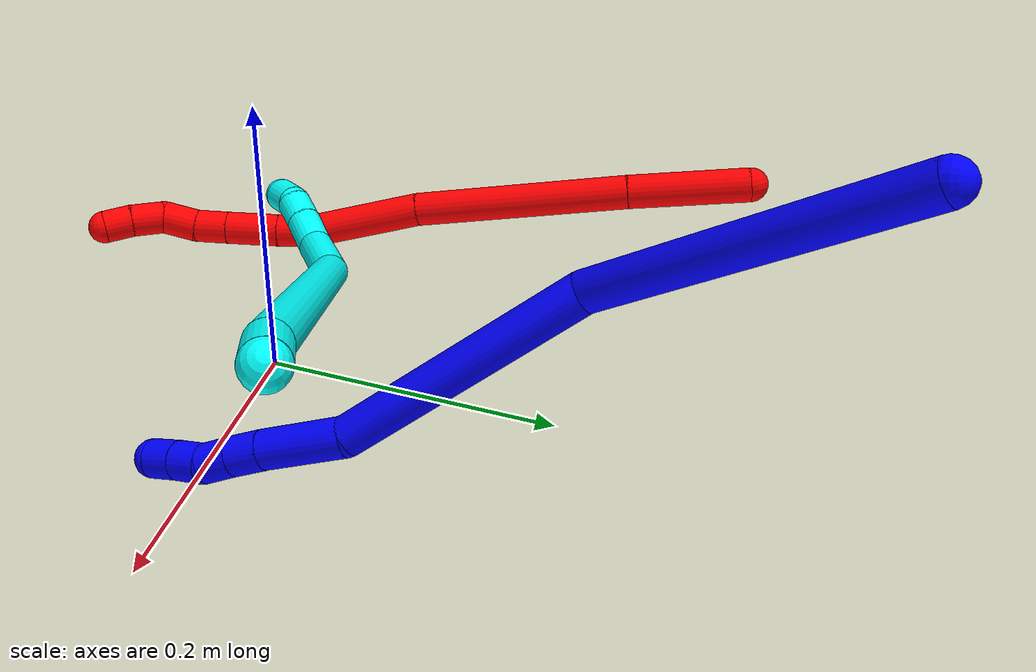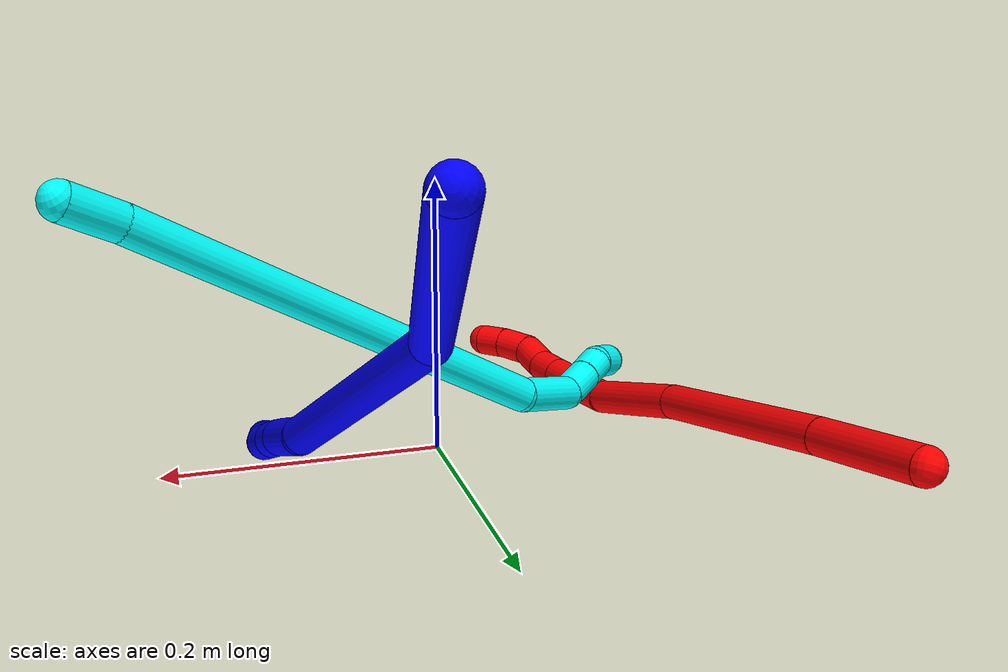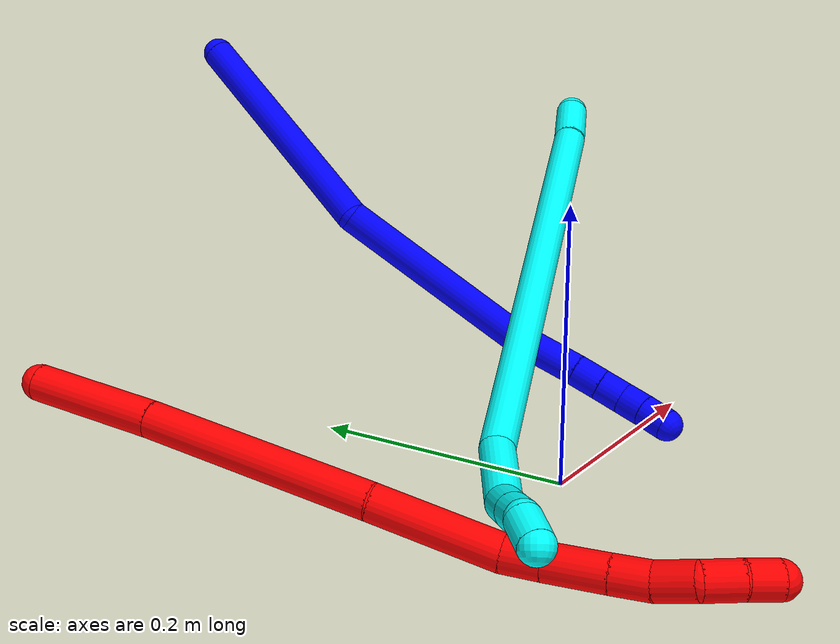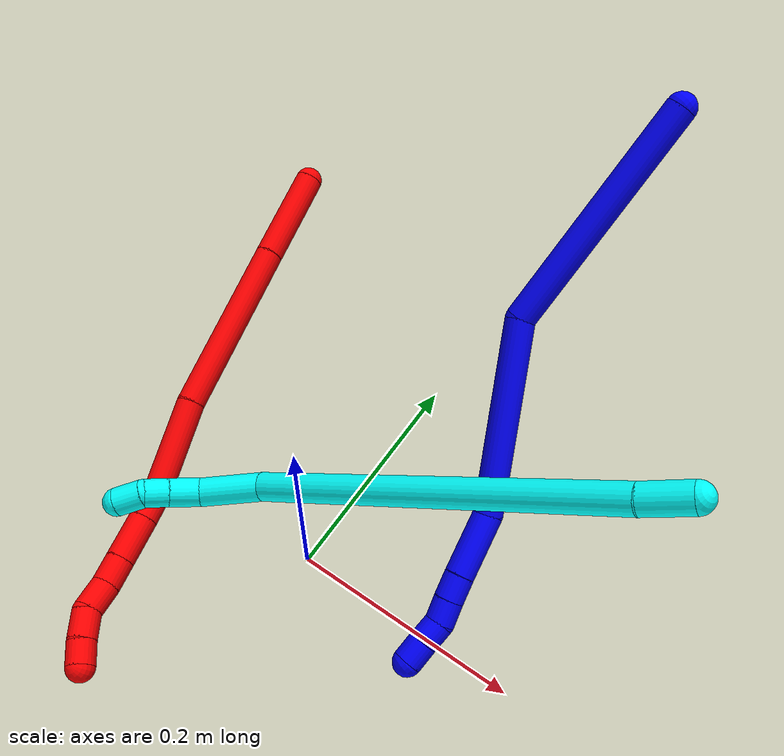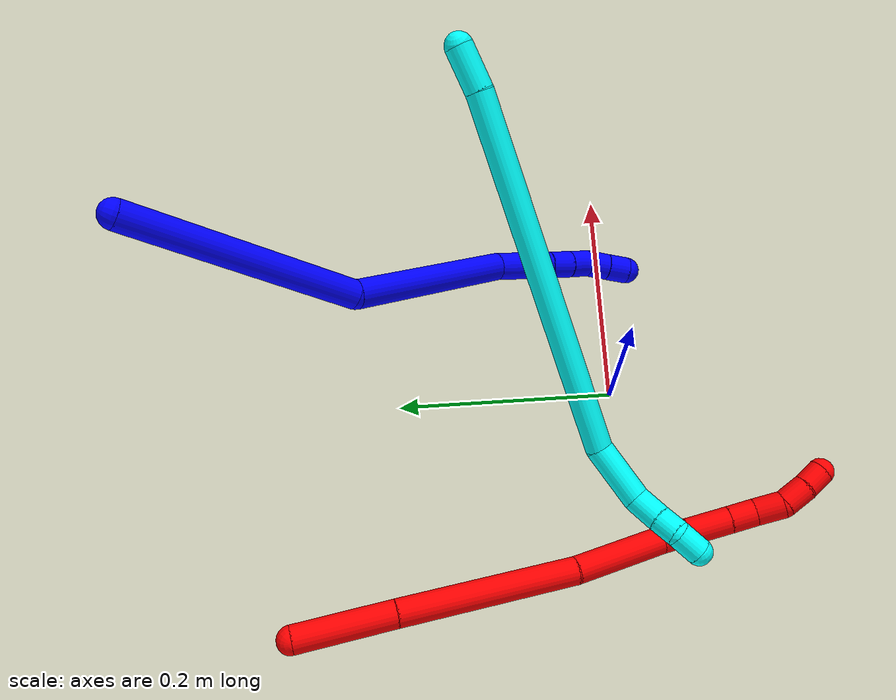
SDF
<sdf version="1.7">
 <world name="default">
  <plugin name="TubeGeneratorPlugin" filename="libtube_generator_plugin.so"/>
  <model name="photoneo_s_sensor">
   <static>1</static>
   <pose>0 0 2 1.57079 1.57079 3.14159</pose>
   <link name="link">
    <inertial><mass>0.1</mass></inertial>
    <sensor name="sensor" type="depth">
     <update_rate>30</update_rate>
     <camera>
      <horizontal_fov>1.22</horizontal_fov>
      <image><width>1920</width><height>1200</height><format>B8G8R8</format></image>
      <clip><near>0.1</near><far>4</far></clip>
      <depth_camera><output>points</output></depth_camera>
     </camera>
     <plugin name="camera_plugin" filename="libgazebo_ros_depth_camera.so">
      <baseline>0.2</baseline>
      <alwaysOn>1</alwaysOn>
      <updateRate>0.0</updateRate>
      <cameraName>camera_ir</cameraName>
      <imageTopicName>/camera/color/image_raw</imageTopicName>
      <cameraInfoTopicName>/camera/color/camera_info</cameraInfoTopicName>
      <depthImageTopicName>/camera/depth/image_raw</depthImageTopicName>
      <depthImageCameraInfoTopicName>/camera/depth/camera_info</depthImageCameraInfoTopicName>
      <pointCloudTopicName>/camera/depth/points</pointCloudTopicName>
      <frameName>fr_optical</frameName>
      <pointCloudCutoff>0.1</pointCloudCutoff>
      <pointCloudCutoffMax>2.0</pointCloudCutoffMax>
      <distortionK1>0</distortionK1>
      <distortionK2>0</distortionK2>
      <distortionK3>0</distortionK3>
      <distortionT1>0</distortionT1>
      <distortionT2>0</distortionT2>
      <CxPrime>0</CxPrime>
      <Cx>0</Cx>
      <Cy>0</Cy>
      <focalLength>0</focalLength>
      <hackBaseline>0</hackBaseline>
     </plugin>
    </sensor>
   </link>
  </model>
  <gravity>0 0 -9.8</gravity>
  <magnetic_field>6e-06 2.3e-05 -4.2e-05</magnetic_field>
  <atmosphere type="adiabatic"/>
  <physics name="default_physics" default="0" type="ode">
   <max_step_size>0.003</max_step_size>
   <real_time_factor>1</real_time_factor>
   <real_time_update_rate>1000</real_time_update_rate>
   <max_contacts>10000</max_contacts>
   <ode>
    <solver>
     <type>quick</type>
     <iters>100</iters>
     <sor>1.3</sor>
     <use_dynamic_moi_rescaling>0</use_dynamic_moi_rescaling>
    </solver>
    <constraints>
     <contact_max_correcting_vel>0</contact_max_correcting_vel>
     <contact_surface_layer>0.001</contact_surface_layer>
     <cfm>0</cfm>
     <erp>0.2</erp>
    </constraints>
   </ode>
  </physics>
  <scene><ambient>0.4 0.4 0.4 1</ambient><background>0.7 0.7 0.7 1</background><shadows>0</shadows></scene>
  <audio><device>default</device></audio>
  <spherical_coordinates>
   <surface_model>EARTH_WGS84</surface_model>
   <latitude_deg>0</latitude_deg>
   <longitude_deg>0</longitude_deg>
   <elevation>0</elevation>
   <heading_deg>0</heading_deg>
  </spherical_coordinates>
  <model name="bin">
   <static>1</static>
   <link name="bottom">
    <collision name="collision-bottom">
     <pose>0 0 -0.01 0 -0 0</pose>
     <geometry><box><size>0.8 0.6 0.02</size></box></geometry>
     <surface>
      <friction><ode><mu>100</mu><mu2>100</mu2></ode></friction>
      <contact><collide_bitmask>65535</collide_bitmask></contact>
     </surface>
    </collision>
   </link>
   <link name="west_wall">
    <collision name="collision-west_wall">
     <pose>-0.41 0 0.1 0 -0 0</pose>
     <geometry><box><size>0.02 0.6 0.2</size></box></geometry>
     <surface>
      <friction><ode><mu>100</mu><mu2>100</mu2></ode></friction>
      <contact><collide_bitmask>65535</collide_bitmask></contact>
     </surface>
    </collision>
   </link>
   <link name="east_wall">
    <collision name="collision-east_wall">
     <pose>0.41 0 0.1 0 -0 0</pose>
     <geometry><box><size>0.02 0.6 0.2</size></box></geometry>
     <surface>
      <friction><ode><mu>100</mu><mu2>100</mu2></ode></friction>
      <contact><collide_bitmask>65535</collide_bitmask></contact>
     </surface>
    </collision>
   </link>
   <link name="south_wall">
    <collision name="collision-south_wall">
     <pose>0 -0.31 0.1 0 -0 0</pose>
     <geometry><box><size>0.8 0.02 0.2</size></box></geometry>
     <surface>
      <friction><ode><mu>100</mu><mu2>100</mu2></ode></friction>
      <contact><collide_bitmask>65535</collide_bitmask></contact>
     </surface>
    </collision>
   </link>
   <link name="north_wall">
    <collision name="collision-north_wall">
     <pose>0 0.31 0.1 0 -0 0</pose>
     <geometry><box><size>0.8 0.02 0.2</size></box></geometry>
     <surface>
      <friction><ode><mu>100</mu><mu2>100</mu2></ode></friction>
      <contact><collide_bitmask>65535</collide_bitmask></contact>
     </surface>
    </collision>
   </link>
  </model>
  <model name="1">
   <static>0</static>
   <link name="1">
    <collision name="collision-cylinder-e_1_1_4">
     <pose>0.020285 -0.017562 -0.096133 2.9609 0.204664 1.6958</pose>
     <geometry><cylinder><radius>0.0125</radius><length>0.199615</length></cylinder></geometry>
     <surface>
      <friction><ode><mu>1.16</mu><mu2>1.16</mu2><slip1>0</slip1><slip2>0</slip2></ode></friction>
      <contact><ode><kp>1e+06</kp><kd>1</kd><max_vel>0</max_vel><min_depth>0.001</min_depth></ode></contact>
     </surface>
    </collision>
    <visual name="visual-cylinder-e_1_1_4">
     <pose>0.020285 -0.017562 -0.096133 2.9609 0.204664 1.6958</pose>
     <geometry><cylinder><radius>0.0125</radius><length>0.199615</length></cylinder></geometry>
     <material><ambient>0 0 1 1</ambient></material>
    </visual>
    <collision name="collision-cylinder-e_2_4_5">
     <pose>0.054889 -0.085691 -0.254229 2.45713 0.177166 0.488651</pose>
     <geometry><cylinder><radius>0.0125</radius><length>0.162497</length></cylinder></geometry>
     <surface>
      <friction><ode><mu>1.16</mu><mu2>1.16</mu2><slip1>0</slip1><slip2>0</slip2></ode></friction>
      <contact><ode><kp>1e+06</kp><kd>1</kd><max_vel>0</max_vel><min_depth>0.001</min_depth></ode></contact>
     </surface>
    </collision>
    <visual name="visual-cylinder-e_2_4_5">
     <pose>0.054889 -0.085691 -0.254229 2.45713 0.177166 0.488651</pose>
     <geometry><cylinder><radius>0.0125</radius><length>0.162497</length></cylinder></geometry>
     <material><ambient>0 0 1 1</ambient></material>
    </visual>
    <collision name="collision-cylinder-e_3_5_6">
     <pose>0.067173 -0.147496 -0.341022 2.71653 -0.07451 -0.342075</pose>
     <geometry><cylinder><radius>0.0125</radius><length>0.054664</length></cylinder></geometry>
     <surface>
      <friction><ode><mu>1.16</mu><mu2>1.16</mu2><slip1>0</slip1><slip2>0</slip2></ode></friction>
      <contact><ode><kp>1e+06</kp><kd>1</kd><max_vel>0</max_vel><min_depth>0.001</min_depth></ode></contact>
     </surface>
    </collision>
    <visual name="visual-cylinder-e_3_5_6">
     <pose>0.067173 -0.147496 -0.341022 2.71653 -0.07451 -0.342075</pose>
     <geometry><cylinder><radius>0.0125</radius><length>0.054664</length></cylinder></geometry>
     <material><ambient>0 0 1 1</ambient></material>
    </visual>
    <collision name="collision-cylinder-e_4_6_7">
     <pose>0.064836 -0.163454 -0.375687 2.6943 -0.027738 -0.121809</pose>
     <geometry><cylinder><radius>0.0125</radius><length>0.021822</length></cylinder></geometry>
     <surface>
      <friction><ode><mu>1.16</mu><mu2>1.16</mu2><slip1>0</slip1><slip2>0</slip2></ode></friction>
      <contact><ode><kp>1e+06</kp><kd>1</kd><max_vel>0</max_vel><min_depth>0.001</min_depth></ode></contact>
     </surface>
    </collision>
    <visual name="visual-cylinder-e_4_6_7">
     <pose>0.064836 -0.163454 -0.375687 2.6943 -0.027738 -0.121809</pose>
     <geometry><cylinder><radius>0.0125</radius><length>0.021822</length></cylinder></geometry>
     <material><ambient>0 0 1 1</ambient></material>
    </visual>
    <collision name="collision-cylinder-e_5_7_8">
     <pose>0.064419 -0.172933 -0.394715 2.66369 -0.011083 -0.045486</pose>
     <geometry><cylinder><radius>0.0125</radius><length>0.02071</length></cylinder></geometry>
     <surface>
      <friction><ode><mu>1.16</mu><mu2>1.16</mu2><slip1>0</slip1><slip2>0</slip2></ode></friction>
      <contact><ode><kp>1e+06</kp><kd>1</kd><max_vel>0</max_vel><min_depth>0.001</min_depth></ode></contact>
     </surface>
    </collision>
    <visual name="visual-cylinder-e_5_7_8">
     <pose>0.064419 -0.172933 -0.394715 2.66369 -0.011083 -0.045486</pose>
     <geometry><cylinder><radius>0.0125</radius><length>0.02071</length></cylinder></geometry>
     <material><ambient>0 0 1 1</ambient></material>
    </visual>
    <collision name="collision-cylinder-e_6_8_9">
     <pose>0.062873 -0.179284 -0.413773 2.98195 -0.142256 -1.45531</pose>
     <geometry><cylinder><radius>0.0125</radius><length>0.020186</length></cylinder></geometry>
     <surface>
      <friction><ode><mu>1.16</mu><mu2>1.16</mu2><slip1>0</slip1><slip2>0</slip2></ode></friction>
      <contact><ode><kp>1e+06</kp><kd>1</kd><max_vel>0</max_vel><min_depth>0.001</min_depth></ode></contact>
     </surface>
    </collision>
    <visual name="visual-cylinder-e_6_8_9">
     <pose>0.062873 -0.179284 -0.413773 2.98195 -0.142256 -1.45531</pose>
     <geometry><cylinder><radius>0.0125</radius><length>0.020186</length></cylinder></geometry>
     <material><ambient>0 0 1 1</ambient></material>
    </visual>
    <collision name="collision-cylinder-e_7_9_2">
     <pose>0.060342 -0.182774 -0.433652 2.95386 -0.107463 -1.03807</pose>
     <geometry><cylinder><radius>0.0125</radius><length>0.020506</length></cylinder></geometry>
     <surface>
      <friction><ode><mu>1.16</mu><mu2>1.16</mu2><slip1>0</slip1><slip2>0</slip2></ode></friction>
      <contact><ode><kp>1e+06</kp><kd>1</kd><max_vel>0</max_vel><min_depth>0.001</min_depth></ode></contact>
     </surface>
    </collision>
    <visual name="visual-cylinder-e_7_9_2">
     <pose>0.060342 -0.182774 -0.433652 2.95386 -0.107463 -1.03807</pose>
     <geometry><cylinder><radius>0.0125</radius><length>0.020506</length></cylinder></geometry>
     <material><ambient>0 0 1 1</ambient></material>
    </visual>
    <collision name="collision-sphere-2">
     <pose>0.059243 -0.184677 -0.443667 0 -0 0</pose>
     <geometry><sphere><radius>0.0125</radius></sphere></geometry>
     <surface>
      <friction><ode><mu>1.16</mu><mu2>1.16</mu2><slip1>0</slip1><slip2>0</slip2></ode></friction>
      <contact><ode><kp>1e+06</kp><kd>1</kd><max_vel>0</max_vel><min_depth>0.001</min_depth></ode></contact>
     </surface>
    </collision>
    <visual name="visual-sphere-2">
     <pose>0.059243 -0.184677 -0.443667 0 -0 0</pose>
     <geometry><sphere><radius>0.0125</radius></sphere></geometry>
     <material><ambient>0 0 1 1</ambient></material>
    </visual>
    <collision name="collision-sphere-9">
     <pose>0.061442 -0.180872 -0.423637 0 -0 0</pose>
     <geometry><sphere><radius>0.0125</radius></sphere></geometry>
     <surface>
      <friction><ode><mu>1.16</mu><mu2>1.16</mu2><slip1>0</slip1><slip2>0</slip2></ode></friction>
      <contact><ode><kp>1e+06</kp><kd>1</kd><max_vel>0</max_vel><min_depth>0.001</min_depth></ode></contact>
     </surface>
    </collision>
    <visual name="visual-sphere-9">
     <pose>0.061442 -0.180872 -0.423637 0 -0 0</pose>
     <geometry><sphere><radius>0.0125</radius></sphere></geometry>
     <material><ambient>0 0 1 1</ambient></material>
    </visual>
    <collision name="collision-sphere-4">
     <pose>0.040569 -0.035125 -0.192266 0 -0 0</pose>
     <geometry><sphere><radius>0.0125</radius></sphere></geometry>
     <surface>
      <friction><ode><mu>1.16</mu><mu2>1.16</mu2><slip1>0</slip1><slip2>0</slip2></ode></friction>
      <contact><ode><kp>1e+06</kp><kd>1</kd><max_vel>0</max_vel><min_depth>0.001</min_depth></ode></contact>
     </surface>
    </collision>
    <visual name="visual-sphere-4">
     <pose>0.040569 -0.035125 -0.192266 0 -0 0</pose>
     <geometry><sphere><radius>0.0125</radius></sphere></geometry>
     <material><ambient>0 0 1 1</ambient></material>
    </visual>
    <collision name="collision-sphere-1">
     <geometry><sphere><radius>0.0125</radius></sphere></geometry>
     <surface>
      <friction><ode><mu>1.16</mu><mu2>1.16</mu2><slip1>0</slip1><slip2>0</slip2></ode></friction>
      <contact><ode><kp>1e+06</kp><kd>1</kd><max_vel>0</max_vel><min_depth>0.001</min_depth></ode></contact>
     </surface>
    </collision>
    <visual name="visual-sphere-1">
     <geometry><sphere><radius>0.0125</radius></sphere></geometry>
     <material><ambient>0 0 1 1</ambient></material>
    </visual>
    <collision name="collision-sphere-8">
     <pose>0.064304 -0.177695 -0.403909 0 -0 0</pose>
     <geometry><sphere><radius>0.0125</radius></sphere></geometry>
     <surface>
      <friction><ode><mu>1.16</mu><mu2>1.16</mu2><slip1>0</slip1><slip2>0</slip2></ode></friction>
      <contact><ode><kp>1e+06</kp><kd>1</kd><max_vel>0</max_vel><min_depth>0.001</min_depth></ode></contact>
     </surface>
    </collision>
    <visual name="visual-sphere-8">
     <pose>0.064304 -0.177695 -0.403909 0 -0 0</pose>
     <geometry><sphere><radius>0.0125</radius></sphere></geometry>
     <material><ambient>0 0 1 1</ambient></material>
    </visual>
    <collision name="collision-sphere-5">
     <pose>0.069208 -0.136257 -0.316192 0 -0 0</pose>
     <geometry><sphere><radius>0.0125</radius></sphere></geometry>
     <surface>
      <friction><ode><mu>1.16</mu><mu2>1.16</mu2><slip1>0</slip1><slip2>0</slip2></ode></friction>
      <contact><ode><kp>1e+06</kp><kd>1</kd><max_vel>0</max_vel><min_depth>0.001</min_depth></ode></contact>
     </surface>
    </collision>
    <visual name="visual-sphere-5">
     <pose>0.069208 -0.136257 -0.316192 0 -0 0</pose>
     <geometry><sphere><radius>0.0125</radius></sphere></geometry>
     <material><ambient>0 0 1 1</ambient></material>
    </visual>
    <collision name="collision-sphere-6">
     <pose>0.065139 -0.158736 -0.365853 0 -0 0</pose>
     <geometry><sphere><radius>0.0125</radius></sphere></geometry>
     <surface>
      <friction><ode><mu>1.16</mu><mu2>1.16</mu2><slip1>0</slip1><slip2>0</slip2></ode></friction>
      <contact><ode><kp>1e+06</kp><kd>1</kd><max_vel>0</max_vel><min_depth>0.001</min_depth></ode></contact>
     </surface>
    </collision>
    <visual name="visual-sphere-6">
     <pose>0.065139 -0.158736 -0.365853 0 -0 0</pose>
     <geometry><sphere><radius>0.0125</radius></sphere></geometry>
     <material><ambient>0 0 1 1</ambient></material>
    </visual>
    <collision name="collision-sphere-7">
     <pose>0.064533 -0.168171 -0.385521 0 -0 0</pose>
     <geometry><sphere><radius>0.0125</radius></sphere></geometry>
     <surface>
      <friction><ode><mu>1.16</mu><mu2>1.16</mu2><slip1>0</slip1><slip2>0</slip2></ode></friction>
      <contact><ode><kp>1e+06</kp><kd>1</kd><max_vel>0</max_vel><min_depth>0.001</min_depth></ode></contact>
     </surface>
    </collision>
    <visual name="visual-sphere-7">
     <pose>0.064533 -0.168171 -0.385521 0 -0 0</pose>
     <geometry><sphere><radius>0.0125</radius></sphere></geometry>
     <material><ambient>0 0 1 1</ambient></material>
    </visual>
    <inertial>
     <pose>0.043792 -0.080017 -0.225521 0 -0 0</pose>
     <mass>0.5</mass>
     <inertia>
      <ixx>0.001069</ixx>
      <ixy>0</ixy>
      <ixz>0</ixz>
      <iyy>0.000656</iyy>
      <iyz>0</iyz>
      <izz>0.000119</izz>
     </inertia>
    </inertial>
   </link>
   <pose>0.086975 0.378604 0.273995 0.488142 1.11859 1.76864</pose>
  </model>
  <model name="2">
   <static>0</static>
   <link name="2">
    <collision name="collision-cylinder-e_1_1_4">
     <pose>0.010186 -0.042466 0.005345 1.44559 0.233633 0.206279</pose>
     <geometry><cylinder><radius>0.0125</radius><length>0.087992</length></cylinder></geometry>
     <surface>
      <friction><ode><mu>1.16</mu><mu2>1.16</mu2><slip1>0</slip1><slip2>0</slip2></ode></friction>
      <contact><ode><kp>1e+06</kp><kd>1</kd><max_vel>0</max_vel><min_depth>0.001</min_depth></ode></contact>
     </surface>
    </collision>
    <visual name="visual-cylinder-e_1_1_4">
     <pose>0.010186 -0.042466 0.005345 1.44559 0.233633 0.206279</pose>
     <geometry><cylinder><radius>0.0125</radius><length>0.087992</length></cylinder></geometry>
     <material><ambient>1 0 0 1</ambient></material>
    </visual>
    <collision name="collision-cylinder-e_2_4_5">
     <pose>0.037278 -0.162889 0.018256 1.47404 0.212598 0.193091</pose>
     <geometry><cylinder><radius>0.0125</radius><length>0.160255</length></cylinder></geometry>
     <surface>
      <friction><ode><mu>1.16</mu><mu2>1.16</mu2><slip1>0</slip1><slip2>0</slip2></ode></friction>
      <contact><ode><kp>1e+06</kp><kd>1</kd><max_vel>0</max_vel><min_depth>0.001</min_depth></ode></contact>
     </surface>
    </collision>
    <visual name="visual-cylinder-e_2_4_5">
     <pose>0.037278 -0.162889 0.018256 1.47404 0.212598 0.193091</pose>
     <geometry><cylinder><radius>0.0125</radius><length>0.160255</length></cylinder></geometry>
     <material><ambient>1 0 0 1</ambient></material>
    </visual>
    <collision name="collision-cylinder-e_3_5_6">
     <pose>0.065985 -0.282539 0.025063 1.589 0.275767 0.280768</pose>
     <geometry><cylinder><radius>0.0125</radius><length>0.086675</length></cylinder></geometry>
     <surface>
      <friction><ode><mu>1.16</mu><mu2>1.16</mu2><slip1>0</slip1><slip2>0</slip2></ode></friction>
      <contact><ode><kp>1e+06</kp><kd>1</kd><max_vel>0</max_vel><min_depth>0.001</min_depth></ode></contact>
     </surface>
    </collision>
    <visual name="visual-cylinder-e_3_5_6">
     <pose>0.065985 -0.282539 0.025063 1.589 0.275767 0.280768</pose>
     <geometry><cylinder><radius>0.0125</radius><length>0.086675</length></cylinder></geometry>
     <material><ambient>1 0 0 1</ambient></material>
    </visual>
    <collision name="collision-cylinder-e_4_6_7">
     <pose>0.08174 -0.336116 0.026946 1.35199 0.314098 0.252665</pose>
     <geometry><cylinder><radius>0.0125</radius><length>0.025601</length></cylinder></geometry>
     <surface>
      <friction><ode><mu>1.16</mu><mu2>1.16</mu2><slip1>0</slip1><slip2>0</slip2></ode></friction>
      <contact><ode><kp>1e+06</kp><kd>1</kd><max_vel>0</max_vel><min_depth>0.001</min_depth></ode></contact>
     </surface>
    </collision>
    <visual name="visual-cylinder-e_4_6_7">
     <pose>0.08174 -0.336116 0.026946 1.35199 0.314098 0.252665</pose>
     <geometry><cylinder><radius>0.0125</radius><length>0.025601</length></cylinder></geometry>
     <material><ambient>1 0 0 1</ambient></material>
    </visual>
    <collision name="collision-cylinder-e_5_7_8">
     <pose>0.091987 -0.366715 0.034378 1.32028 0.314862 0.245239</pose>
     <geometry><cylinder><radius>0.0125</radius><length>0.040634</length></cylinder></geometry>
     <surface>
      <friction><ode><mu>1.16</mu><mu2>1.16</mu2><slip1>0</slip1><slip2>0</slip2></ode></friction>
      <contact><ode><kp>1e+06</kp><kd>1</kd><max_vel>0</max_vel><min_depth>0.001</min_depth></ode></contact>
     </surface>
    </collision>
    <visual name="visual-cylinder-e_5_7_8">
     <pose>0.091987 -0.366715 0.034378 1.32028 0.314862 0.245239</pose>
     <geometry><cylinder><radius>0.0125</radius><length>0.040634</length></cylinder></geometry>
     <material><ambient>1 0 0 1</ambient></material>
    </visual>
    <collision name="collision-cylinder-e_6_8_9">
     <pose>0.102297 -0.396922 0.042223 1.31091 0.325851 0.251439</pose>
     <geometry><cylinder><radius>0.0125</radius><length>0.025103</length></cylinder></geometry>
     <surface>
      <friction><ode><mu>1.16</mu><mu2>1.16</mu2><slip1>0</slip1><slip2>0</slip2></ode></friction>
      <contact><ode><kp>1e+06</kp><kd>1</kd><max_vel>0</max_vel><min_depth>0.001</min_depth></ode></contact>
     </surface>
    </collision>
    <visual name="visual-cylinder-e_6_8_9">
     <pose>0.102297 -0.396922 0.042223 1.31091 0.325851 0.251439</pose>
     <geometry><cylinder><radius>0.0125</radius><length>0.025103</length></cylinder></geometry>
     <material><ambient>1 0 0 1</ambient></material>
    </visual>
    <collision name="collision-cylinder-e_7_9_10">
     <pose>0.111106 -0.419537 0.051108 1.08803 0.364445 0.22201</pose>
     <geometry><cylinder><radius>0.0125</radius><length>0.026883</length></cylinder></geometry>
     <surface>
      <friction><ode><mu>1.16</mu><mu2>1.16</mu2><slip1>0</slip1><slip2>0</slip2></ode></friction>
      <contact><ode><kp>1e+06</kp><kd>1</kd><max_vel>0</max_vel><min_depth>0.001</min_depth></ode></contact>
     </surface>
    </collision>
    <visual name="visual-cylinder-e_7_9_10">
     <pose>0.111106 -0.419537 0.051108 1.08803 0.364445 0.22201</pose>
     <geometry><cylinder><radius>0.0125</radius><length>0.026883</length></cylinder></geometry>
     <material><ambient>1 0 0 1</ambient></material>
    </visual>
    <collision name="collision-cylinder-e_8_10_11">
     <pose>0.123796 -0.440529 0.058123 1.45137 0.671523 0.600484</pose>
     <geometry><cylinder><radius>0.0125</radius><length>0.025392</length></cylinder></geometry>
     <surface>
      <friction><ode><mu>1.16</mu><mu2>1.16</mu2><slip1>0</slip1><slip2>0</slip2></ode></friction>
      <contact><ode><kp>1e+06</kp><kd>1</kd><max_vel>0</max_vel><min_depth>0.001</min_depth></ode></contact>
     </surface>
    </collision>
    <visual name="visual-cylinder-e_8_10_11">
     <pose>0.123796 -0.440529 0.058123 1.45137 0.671523 0.600484</pose>
     <geometry><cylinder><radius>0.0125</radius><length>0.025392</length></cylinder></geometry>
     <material><ambient>1 0 0 1</ambient></material>
    </visual>
    <collision name="collision-cylinder-e_9_11_2">
     <pose>0.13877 -0.458463 0.059019 1.60652 0.719724 0.743596</pose>
     <geometry><cylinder><radius>0.0125</radius><length>0.021465</length></cylinder></geometry>
     <surface>
      <friction><ode><mu>1.16</mu><mu2>1.16</mu2><slip1>0</slip1><slip2>0</slip2></ode></friction>
      <contact><ode><kp>1e+06</kp><kd>1</kd><max_vel>0</max_vel><min_depth>0.001</min_depth></ode></contact>
     </surface>
    </collision>
    <visual name="visual-cylinder-e_9_11_2">
     <pose>0.13877 -0.458463 0.059019 1.60652 0.719724 0.743596</pose>
     <geometry><cylinder><radius>0.0125</radius><length>0.021465</length></cylinder></geometry>
     <material><ambient>1 0 0 1</ambient></material>
    </visual>
    <collision name="collision-sphere-2">
     <pose>0.145844 -0.466529 0.05873 0 -0 0</pose>
     <geometry><sphere><radius>0.0125</radius></sphere></geometry>
     <surface>
      <friction><ode><mu>1.16</mu><mu2>1.16</mu2><slip1>0</slip1><slip2>0</slip2></ode></friction>
      <contact><ode><kp>1e+06</kp><kd>1</kd><max_vel>0</max_vel><min_depth>0.001</min_depth></ode></contact>
     </surface>
    </collision>
    <visual name="visual-sphere-2">
     <pose>0.145844 -0.466529 0.05873 0 -0 0</pose>
     <geometry><sphere><radius>0.0125</radius></sphere></geometry>
     <material><ambient>1 0 0 1</ambient></material>
    </visual>
    <collision name="collision-sphere-11">
     <pose>0.131695 -0.450398 0.059307 0 -0 0</pose>
     <geometry><sphere><radius>0.0125</radius></sphere></geometry>
     <surface>
      <friction><ode><mu>1.16</mu><mu2>1.16</mu2><slip1>0</slip1><slip2>0</slip2></ode></friction>
      <contact><ode><kp>1e+06</kp><kd>1</kd><max_vel>0</max_vel><min_depth>0.001</min_depth></ode></contact>
     </surface>
    </collision>
    <visual name="visual-sphere-11">
     <pose>0.131695 -0.450398 0.059307 0 -0 0</pose>
     <geometry><sphere><radius>0.0125</radius></sphere></geometry>
     <material><ambient>1 0 0 1</ambient></material>
    </visual>
    <collision name="collision-sphere-10">
     <pose>0.115897 -0.43066 0.056938 0 -0 0</pose>
     <geometry><sphere><radius>0.0125</radius></sphere></geometry>
     <surface>
      <friction><ode><mu>1.16</mu><mu2>1.16</mu2><slip1>0</slip1><slip2>0</slip2></ode></friction>
      <contact><ode><kp>1e+06</kp><kd>1</kd><max_vel>0</max_vel><min_depth>0.001</min_depth></ode></contact>
     </surface>
    </collision>
    <visual name="visual-sphere-10">
     <pose>0.115897 -0.43066 0.056938 0 -0 0</pose>
     <geometry><sphere><radius>0.0125</radius></sphere></geometry>
     <material><ambient>1 0 0 1</ambient></material>
    </visual>
    <collision name="collision-sphere-9">
     <pose>0.106315 -0.408414 0.045278 0 -0 0</pose>
     <geometry><sphere><radius>0.0125</radius></sphere></geometry>
     <surface>
      <friction><ode><mu>1.16</mu><mu2>1.16</mu2><slip1>0</slip1><slip2>0</slip2></ode></friction>
      <contact><ode><kp>1e+06</kp><kd>1</kd><max_vel>0</max_vel><min_depth>0.001</min_depth></ode></contact>
     </surface>
    </collision>
    <visual name="visual-sphere-9">
     <pose>0.106315 -0.408414 0.045278 0 -0 0</pose>
     <geometry><sphere><radius>0.0125</radius></sphere></geometry>
     <material><ambient>1 0 0 1</ambient></material>
    </visual>
    <collision name="collision-sphere-4">
     <pose>0.020371 -0.084931 0.01069 0 -0 0</pose>
     <geometry><sphere><radius>0.0125</radius></sphere></geometry>
     <surface>
      <friction><ode><mu>1.16</mu><mu2>1.16</mu2><slip1>0</slip1><slip2>0</slip2></ode></friction>
      <contact><ode><kp>1e+06</kp><kd>1</kd><max_vel>0</max_vel><min_depth>0.001</min_depth></ode></contact>
     </surface>
    </collision>
    <visual name="visual-sphere-4">
     <pose>0.020371 -0.084931 0.01069 0 -0 0</pose>
     <geometry><sphere><radius>0.0125</radius></sphere></geometry>
     <material><ambient>1 0 0 1</ambient></material>
    </visual>
    <collision name="collision-sphere-1">
     <geometry><sphere><radius>0.0125</radius></sphere></geometry>
     <surface>
      <friction><ode><mu>1.16</mu><mu2>1.16</mu2><slip1>0</slip1><slip2>0</slip2></ode></friction>
      <contact><ode><kp>1e+06</kp><kd>1</kd><max_vel>0</max_vel><min_depth>0.001</min_depth></ode></contact>
     </surface>
    </collision>
    <visual name="visual-sphere-1">
     <geometry><sphere><radius>0.0125</radius></sphere></geometry>
     <material><ambient>1 0 0 1</ambient></material>
    </visual>
    <collision name="collision-sphere-8">
     <pose>0.098279 -0.385431 0.039167 0 -0 0</pose>
     <geometry><sphere><radius>0.0125</radius></sphere></geometry>
     <surface>
      <friction><ode><mu>1.16</mu><mu2>1.16</mu2><slip1>0</slip1><slip2>0</slip2></ode></friction>
      <contact><ode><kp>1e+06</kp><kd>1</kd><max_vel>0</max_vel><min_depth>0.001</min_depth></ode></contact>
     </surface>
    </collision>
    <visual name="visual-sphere-8">
     <pose>0.098279 -0.385431 0.039167 0 -0 0</pose>
     <geometry><sphere><radius>0.0125</radius></sphere></geometry>
     <material><ambient>1 0 0 1</ambient></material>
    </visual>
    <collision name="collision-sphere-5">
     <pose>0.054185 -0.240846 0.025822 0 -0 0</pose>
     <geometry><sphere><radius>0.0125</radius></sphere></geometry>
     <surface>
      <friction><ode><mu>1.16</mu><mu2>1.16</mu2><slip1>0</slip1><slip2>0</slip2></ode></friction>
      <contact><ode><kp>1e+06</kp><kd>1</kd><max_vel>0</max_vel><min_depth>0.001</min_depth></ode></contact>
     </surface>
    </collision>
    <visual name="visual-sphere-5">
     <pose>0.054185 -0.240846 0.025822 0 -0 0</pose>
     <geometry><sphere><radius>0.0125</radius></sphere></geometry>
     <material><ambient>1 0 0 1</ambient></material>
    </visual>
    <collision name="collision-sphere-6">
     <pose>0.077786 -0.324232 0.024304 0 -0 0</pose>
     <geometry><sphere><radius>0.0125</radius></sphere></geometry>
     <surface>
      <friction><ode><mu>1.16</mu><mu2>1.16</mu2><slip1>0</slip1><slip2>0</slip2></ode></friction>
      <contact><ode><kp>1e+06</kp><kd>1</kd><max_vel>0</max_vel><min_depth>0.001</min_depth></ode></contact>
     </surface>
    </collision>
    <visual name="visual-sphere-6">
     <pose>0.077786 -0.324232 0.024304 0 -0 0</pose>
     <geometry><sphere><radius>0.0125</radius></sphere></geometry>
     <material><ambient>1 0 0 1</ambient></material>
    </visual>
    <collision name="collision-sphere-7">
     <pose>0.085695 -0.348 0.029589 0 -0 0</pose>
     <geometry><sphere><radius>0.0125</radius></sphere></geometry>
     <surface>
      <friction><ode><mu>1.16</mu><mu2>1.16</mu2><slip1>0</slip1><slip2>0</slip2></ode></friction>
      <contact><ode><kp>1e+06</kp><kd>1</kd><max_vel>0</max_vel><min_depth>0.001</min_depth></ode></contact>
     </surface>
    </collision>
    <visual name="visual-sphere-7">
     <pose>0.085695 -0.348 0.029589 0 -0 0</pose>
     <geometry><sphere><radius>0.0125</radius></sphere></geometry>
     <material><ambient>1 0 0 1</ambient></material>
    </visual>
    <inertial>
     <pose>0.060194 -0.240209 0.025663 0 -0 0</pose>
     <mass>0.5</mass>
     <inertia>
      <ixx>0.000571</ixx>
      <ixy>0</ixy>
      <ixz>0</ixz>
      <iyy>0.000129</iyy>
      <iyz>0</iyz>
      <izz>0.000364</izz>
     </inertia>
    </inertial>
   </link>
   <pose>-0.210461 0.288399 0.080438 0.398063 -0.381435 -0.132779</pose>
  </model>
  <model name="3">
   <static>0</static>
   <link name="3">
    <collision name="collision-cylinder-e_1_1_4">
     <pose>-0.009755 -0.004873 -0.016686 2.85748 -0.511392 -2.14037</pose>
     <geometry><cylinder><radius>0.0125</radius><length>0.039867</length></cylinder></geometry>
     <surface>
      <friction><ode><mu>1.16</mu><mu2>1.16</mu2><slip1>0</slip1><slip2>0</slip2></ode></friction>
      <contact><ode><kp>1e+06</kp><kd>1</kd><max_vel>0</max_vel><min_depth>0.001</min_depth></ode></contact>
     </surface>
    </collision>
    <visual name="visual-cylinder-e_1_1_4">
     <pose>-0.009755 -0.004873 -0.016686 2.85748 -0.511392 -2.14037</pose>
     <geometry><cylinder><radius>0.0125</radius><length>0.039867</length></cylinder></geometry>
     <material><ambient>0.003922 1 0.996078 1</ambient></material>
    </visual>
    <collision name="collision-cylinder-e_2_4_5">
     <pose>-0.100728 -0.031139 -0.175278 2.99196 -0.514998 -2.587</pose>
     <geometry><cylinder><radius>0.0125</radius><length>0.329794</length></cylinder></geometry>
     <surface>
      <friction><ode><mu>1.16</mu><mu2>1.16</mu2><slip1>0</slip1><slip2>0</slip2></ode></friction>
      <contact><ode><kp>1e+06</kp><kd>1</kd><max_vel>0</max_vel><min_depth>0.001</min_depth></ode></contact>
     </surface>
    </collision>
    <visual name="visual-cylinder-e_2_4_5">
     <pose>-0.100728 -0.031139 -0.175278 2.99196 -0.514998 -2.587</pose>
     <geometry><cylinder><radius>0.0125</radius><length>0.329794</length></cylinder></geometry>
     <material><ambient>0.003922 1 0.996078 1</ambient></material>
    </visual>
    <collision name="collision-cylinder-e_3_5_6">
     <pose>-0.196952 -0.065898 -0.337181 2.55243 -0.55781 -1.51303</pose>
     <geometry><cylinder><radius>0.0125</radius><length>0.056702</length></cylinder></geometry>
     <surface>
      <friction><ode><mu>1.16</mu><mu2>1.16</mu2><slip1>0</slip1><slip2>0</slip2></ode></friction>
      <contact><ode><kp>1e+06</kp><kd>1</kd><max_vel>0</max_vel><min_depth>0.001</min_depth></ode></contact>
     </surface>
    </collision>
    <visual name="visual-cylinder-e_3_5_6">
     <pose>-0.196952 -0.065898 -0.337181 2.55243 -0.55781 -1.51303</pose>
     <geometry><cylinder><radius>0.0125</radius><length>0.056702</length></cylinder></geometry>
     <material><ambient>0.003922 1 0.996078 1</ambient></material>
    </visual>
    <collision name="collision-cylinder-e_4_6_7">
     <pose>-0.220732 -0.089131 -0.361377 1.97294 -0.685716 -0.989834</pose>
     <geometry><cylinder><radius>0.0125</radius><length>0.027709</length></cylinder></geometry>
     <surface>
      <friction><ode><mu>1.16</mu><mu2>1.16</mu2><slip1>0</slip1><slip2>0</slip2></ode></friction>
      <contact><ode><kp>1e+06</kp><kd>1</kd><max_vel>0</max_vel><min_depth>0.001</min_depth></ode></contact>
     </surface>
    </collision>
    <visual name="visual-cylinder-e_4_6_7">
     <pose>-0.220732 -0.089131 -0.361377 1.97294 -0.685716 -0.989834</pose>
     <geometry><cylinder><radius>0.0125</radius><length>0.027709</length></cylinder></geometry>
     <material><ambient>0.003922 1 0.996078 1</ambient></material>
    </visual>
    <collision name="collision-cylinder-e_5_7_8">
     <pose>-0.235956 -0.106775 -0.36871 1.95421 -0.65574 -0.933664</pose>
     <geometry><cylinder><radius>0.0125</radius><length>0.021159</length></cylinder></geometry>
     <surface>
      <friction><ode><mu>1.16</mu><mu2>1.16</mu2><slip1>0</slip1><slip2>0</slip2></ode></friction>
      <contact><ode><kp>1e+06</kp><kd>1</kd><max_vel>0</max_vel><min_depth>0.001</min_depth></ode></contact>
     </surface>
    </collision>
    <visual name="visual-cylinder-e_5_7_8">
     <pose>-0.235956 -0.106775 -0.36871 1.95421 -0.65574 -0.933664</pose>
     <geometry><cylinder><radius>0.0125</radius><length>0.021159</length></cylinder></geometry>
     <material><ambient>0.003922 1 0.996078 1</ambient></material>
    </visual>
    <collision name="collision-cylinder-e_6_8_2">
     <pose>-0.246924 -0.122318 -0.380371 2.40263 -0.373384 -0.907612</pose>
     <geometry><cylinder><radius>0.0125</radius><length>0.024768</length></cylinder></geometry>
     <surface>
      <friction><ode><mu>1.16</mu><mu2>1.16</mu2><slip1>0</slip1><slip2>0</slip2></ode></friction>
      <contact><ode><kp>1e+06</kp><kd>1</kd><max_vel>0</max_vel><min_depth>0.001</min_depth></ode></contact>
     </surface>
    </collision>
    <visual name="visual-cylinder-e_6_8_2">
     <pose>-0.246924 -0.122318 -0.380371 2.40263 -0.373384 -0.907612</pose>
     <geometry><cylinder><radius>0.0125</radius><length>0.024768</length></cylinder></geometry>
     <material><ambient>0.003922 1 0.996078 1</ambient></material>
    </visual>
    <collision name="collision-sphere-2">
     <pose>-0.251442 -0.130085 -0.388894 0 -0 0</pose>
     <geometry><sphere><radius>0.0125</radius></sphere></geometry>
     <surface>
      <friction><ode><mu>1.16</mu><mu2>1.16</mu2><slip1>0</slip1><slip2>0</slip2></ode></friction>
      <contact><ode><kp>1e+06</kp><kd>1</kd><max_vel>0</max_vel><min_depth>0.001</min_depth></ode></contact>
     </surface>
    </collision>
    <visual name="visual-sphere-2">
     <pose>-0.251442 -0.130085 -0.388894 0 -0 0</pose>
     <geometry><sphere><radius>0.0125</radius></sphere></geometry>
     <material><ambient>0.003922 1 0.996078 1</ambient></material>
    </visual>
    <collision name="collision-sphere-4">
     <pose>-0.019511 -0.009745 -0.033373 0 -0 0</pose>
     <geometry><sphere><radius>0.0125</radius></sphere></geometry>
     <surface>
      <friction><ode><mu>1.16</mu><mu2>1.16</mu2><slip1>0</slip1><slip2>0</slip2></ode></friction>
      <contact><ode><kp>1e+06</kp><kd>1</kd><max_vel>0</max_vel><min_depth>0.001</min_depth></ode></contact>
     </surface>
    </collision>
    <visual name="visual-sphere-4">
     <pose>-0.019511 -0.009745 -0.033373 0 -0 0</pose>
     <geometry><sphere><radius>0.0125</radius></sphere></geometry>
     <material><ambient>0.003922 1 0.996078 1</ambient></material>
    </visual>
    <collision name="collision-sphere-1">
     <geometry><sphere><radius>0.0125</radius></sphere></geometry>
     <surface>
      <friction><ode><mu>1.16</mu><mu2>1.16</mu2><slip1>0</slip1><slip2>0</slip2></ode></friction>
      <contact><ode><kp>1e+06</kp><kd>1</kd><max_vel>0</max_vel><min_depth>0.001</min_depth></ode></contact>
     </surface>
    </collision>
    <visual name="visual-sphere-1">
     <geometry><sphere><radius>0.0125</radius></sphere></geometry>
     <material><ambient>0.003922 1 0.996078 1</ambient></material>
    </visual>
    <collision name="collision-sphere-8">
     <pose>-0.242407 -0.114552 -0.371847 0 -0 0</pose>
     <geometry><sphere><radius>0.0125</radius></sphere></geometry>
     <surface>
      <friction><ode><mu>1.16</mu><mu2>1.16</mu2><slip1>0</slip1><slip2>0</slip2></ode></friction>
      <contact><ode><kp>1e+06</kp><kd>1</kd><max_vel>0</max_vel><min_depth>0.001</min_depth></ode></contact>
     </surface>
    </collision>
    <visual name="visual-sphere-8">
     <pose>-0.242407 -0.114552 -0.371847 0 -0 0</pose>
     <geometry><sphere><radius>0.0125</radius></sphere></geometry>
     <material><ambient>0.003922 1 0.996078 1</ambient></material>
    </visual>
    <collision name="collision-sphere-5">
     <pose>-0.181945 -0.052532 -0.317183 0 -0 0</pose>
     <geometry><sphere><radius>0.0125</radius></sphere></geometry>
     <surface>
      <friction><ode><mu>1.16</mu><mu2>1.16</mu2><slip1>0</slip1><slip2>0</slip2></ode></friction>
      <contact><ode><kp>1e+06</kp><kd>1</kd><max_vel>0</max_vel><min_depth>0.001</min_depth></ode></contact>
     </surface>
    </collision>
    <visual name="visual-sphere-5">
     <pose>-0.181945 -0.052532 -0.317183 0 -0 0</pose>
     <geometry><sphere><radius>0.0125</radius></sphere></geometry>
     <material><ambient>0.003922 1 0.996078 1</ambient></material>
    </visual>
    <collision name="collision-sphere-6">
     <pose>-0.211959 -0.079264 -0.35718 0 -0 0</pose>
     <geometry><sphere><radius>0.0125</radius></sphere></geometry>
     <surface>
      <friction><ode><mu>1.16</mu><mu2>1.16</mu2><slip1>0</slip1><slip2>0</slip2></ode></friction>
      <contact><ode><kp>1e+06</kp><kd>1</kd><max_vel>0</max_vel><min_depth>0.001</min_depth></ode></contact>
     </surface>
    </collision>
    <visual name="visual-sphere-6">
     <pose>-0.211959 -0.079264 -0.35718 0 -0 0</pose>
     <geometry><sphere><radius>0.0125</radius></sphere></geometry>
     <material><ambient>0.003922 1 0.996078 1</ambient></material>
    </visual>
    <collision name="collision-sphere-7">
     <pose>-0.229505 -0.098999 -0.365573 0 -0 0</pose>
     <geometry><sphere><radius>0.0125</radius></sphere></geometry>
     <surface>
      <friction><ode><mu>1.16</mu><mu2>1.16</mu2><slip1>0</slip1><slip2>0</slip2></ode></friction>
      <contact><ode><kp>1e+06</kp><kd>1</kd><max_vel>0</max_vel><min_depth>0.001</min_depth></ode></contact>
     </surface>
    </collision>
    <visual name="visual-sphere-7">
     <pose>-0.229505 -0.098999 -0.365573 0 -0 0</pose>
     <geometry><sphere><radius>0.0125</radius></sphere></geometry>
     <material><ambient>0.003922 1 0.996078 1</ambient></material>
    </visual>
    <inertial>
     <pose>-0.124002 -0.043918 -0.209652 0 -0 0</pose>
     <mass>0.5</mass>
     <inertia>
      <ixx>-0.00364</ixx>
      <ixy>0</ixy>
      <ixz>0</ixz>
      <iyy>0.001239</iyy>
      <iyz>0</iyz>
      <izz>0.001868</izz>
     </inertia>
    </inertial>
   </link>
   <pose>0.244427 0.12152 0.225325 -0.345473 0.415424 -0.185216</pose>
  </model>
 </world>
</sdf>
